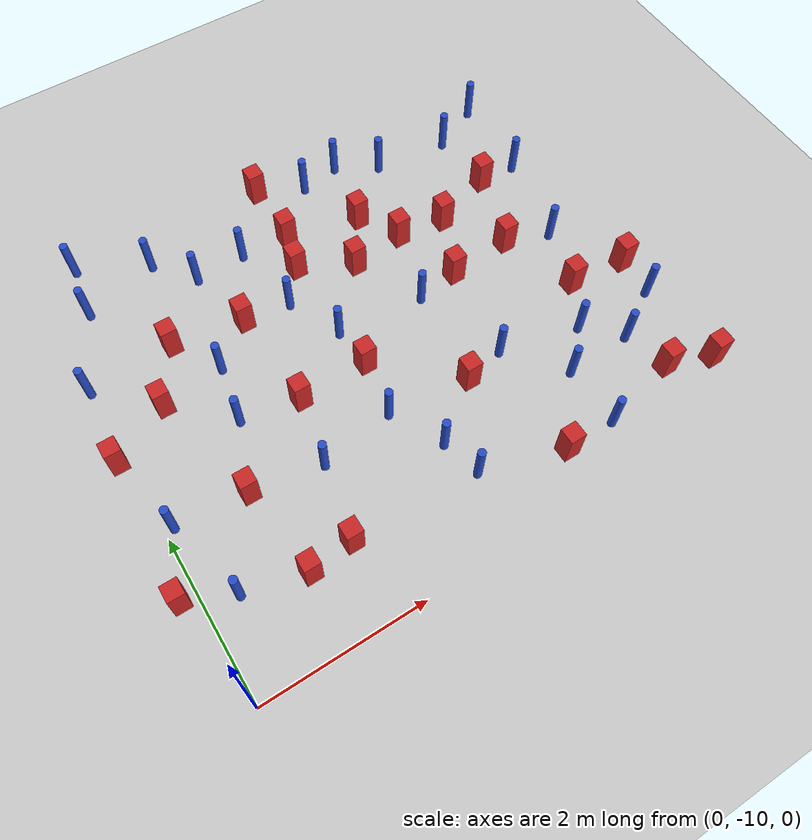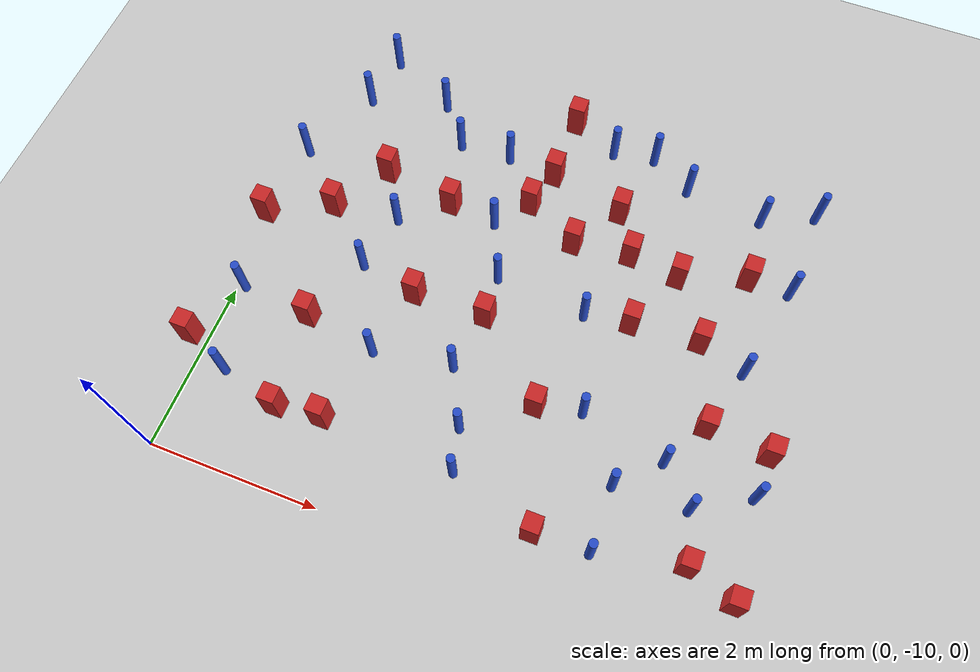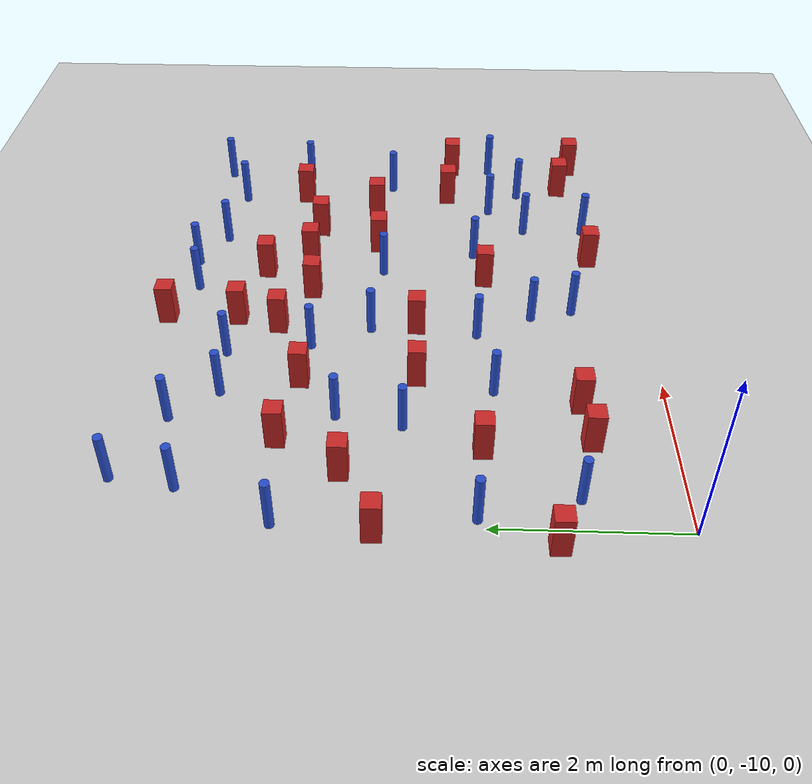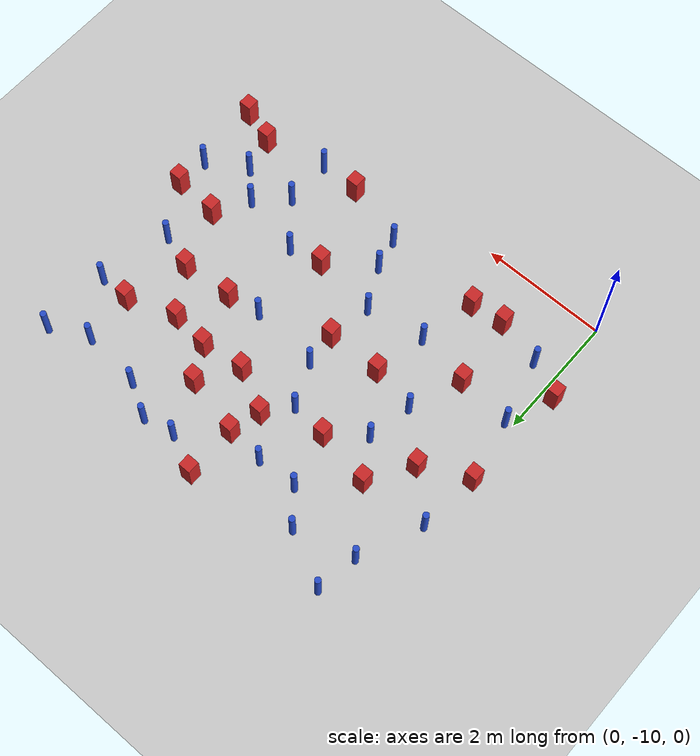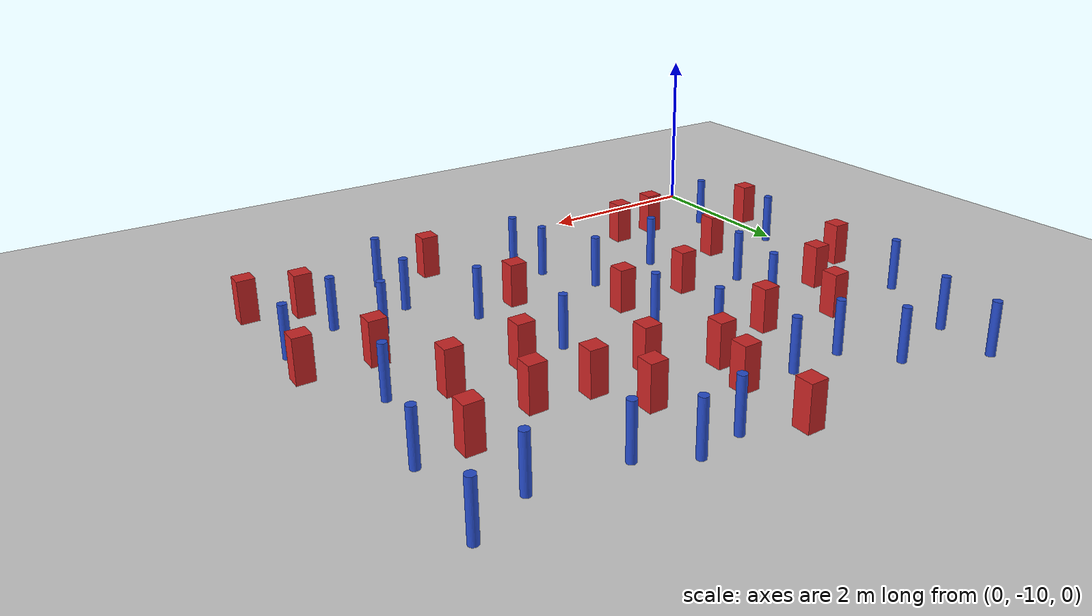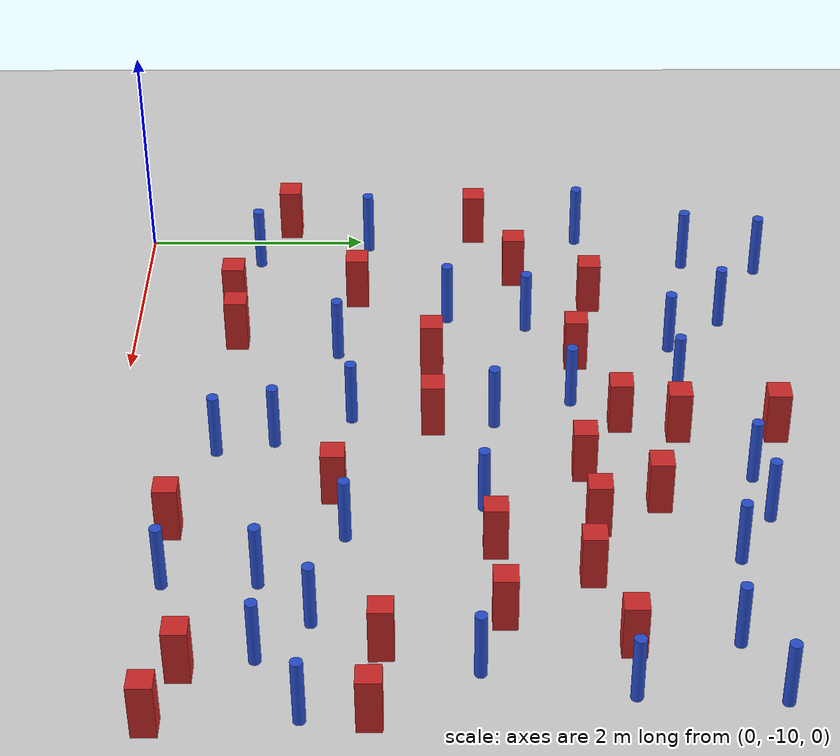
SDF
<sdf version="1.6">
 <world name="default">
  <model name="ground_plane">
   <static>1</static>
   <link name="link">
    <collision name="collision">
     <geometry><plane><normal>0 0 1</normal><size>100 100</size></plane></geometry>
     <surface><friction><ode><mu>100</mu><mu2>50</mu2></ode></friction></surface>
    </collision>
    <visual name="visual">
     <cast_shadows>0</cast_shadows>
     <geometry><plane><normal>0 0 1</normal><size>100 100</size></plane></geometry>
     <material>
      <ambient>1.0 1.0 1.0 1.0</ambient>
      <diffuse>0.8 0.8 0.8 1.0</diffuse>
      <specular>0.01 0.01 0.01 1.000000</specular>
     </material>
    </visual>
   </link>
  </model>
  <model name="square_post_obstacle2">
   <static>true</static>
   <pose>0.977631185792 -7.9997735086 1.91545236811e-07 -7.35059704564e-06 1.12565212e-07 2.39332434364e-05</pose>
   <link name="link">
    <pose>0 0 0.25 0 -0 0</pose>
    <inertial>
     <mass>100</mass>
     <inertia>
      <ixx>0.166667</ixx>
      <ixy>0</ixy>
      <ixz>0</ixz>
      <iyy>0.166667</iyy>
      <iyz>0</iyz>
      <izz>0.166667</izz>
     </inertia>
    </inertial>
    <collision name="collision"><geometry><box><size>.2 .2 .5</size></box></geometry></collision>
    <visual name="visual">
     <geometry><box><size>.2 .2 .5</size></box></geometry>
     <material>
      <script><name>Gazebo/Red</name><uri>file://media/materials/scripts/gazebo.material</uri></script>
     </material>
    </visual>
   </link>
  </model>
  <model name="pole_obstacle5">
   <static>true</static>
   <pose>2.53907456771 -6.09498216123 7.38925637345e-09 -8.47170692798e-08 1.24976765033e-08 -1.74513093019e-07</pose>
   <link name="link">
    <pose>0 0 0.3 0 -0 0</pose>
    <inertial>
     <mass>1</mass>
     <inertia><ixx>0.145833</ixx><ixy>0</ixy><ixz>0</ixz><iyy>0.145833</iyy><iyz>0</iyz><izz>0.125</izz></inertia>
    </inertial>
    <collision name="collision">
     <geometry><cylinder><radius>0.05</radius><length>.6</length></cylinder></geometry>
    </collision>
    <visual name="visual">
     <geometry><cylinder><radius>0.05</radius><length>.6</length></cylinder></geometry>
     <material>
      <script><name>Gazebo/Blue</name><uri>file://media/materials/scripts/gazebo.material</uri></script>
     </material>
    </visual>
   </link>
  </model>
  <model name="square_post_obstacle11">
   <static>true</static>
   <pose>2.01448924822 -7.3073891308 1.91545236811e-07 -7.35059704564e-06 1.12565212e-07 2.39332434364e-05</pose>
   <link name="link">
    <pose>0 0 0.25 0 -0 0</pose>
    <inertial>
     <mass>100</mass>
     <inertia>
      <ixx>0.166667</ixx>
      <ixy>0</ixy>
      <ixz>0</ixz>
      <iyy>0.166667</iyy>
      <iyz>0</iyz>
      <izz>0.166667</izz>
     </inertia>
    </inertial>
    <collision name="collision"><geometry><box><size>.2 .2 .5</size></box></geometry></collision>
    <visual name="visual">
     <geometry><box><size>.2 .2 .5</size></box></geometry>
     <material>
      <script><name>Gazebo/Red</name><uri>file://media/materials/scripts/gazebo.material</uri></script>
     </material>
    </visual>
   </link>
  </model>
  <model name="pole_obstacle11">
   <static>true</static>
   <pose>6.1561207919 -4.64312427732 7.38925637345e-09 -8.47170692796e-08 1.24976764786e-08 -1.74513093032e-07</pose>
   <link name="link">
    <pose>0 0 0.3 0 -0 0</pose>
    <inertial>
     <mass>1</mass>
     <inertia><ixx>0.145833</ixx><ixy>0</ixy><ixz>0</ixz><iyy>0.145833</iyy><iyz>0</iyz><izz>0.125</izz></inertia>
    </inertial>
    <collision name="collision">
     <geometry><cylinder><radius>0.05</radius><length>.6</length></cylinder></geometry>
    </collision>
    <visual name="visual">
     <geometry><cylinder><radius>0.05</radius><length>.6</length></cylinder></geometry>
     <material>
      <script><name>Gazebo/Blue</name><uri>file://media/materials/scripts/gazebo.material</uri></script>
     </material>
    </visual>
   </link>
  </model>
  <model name="pole_obstacle15">
   <static>true</static>
   <pose>2.8436868365 -6.76617443891 7.38925637345e-09 -8.47170692798e-08 1.24976765033e-08 -1.74513093019e-07</pose>
   <link name="link">
    <pose>0 0 0.3 0 -0 0</pose>
    <inertial>
     <mass>1</mass>
     <inertia><ixx>0.145833</ixx><ixy>0</ixy><ixz>0</ixz><iyy>0.145833</iyy><iyz>0</iyz><izz>0.125</izz></inertia>
    </inertial>
    <collision name="collision">
     <geometry><cylinder><radius>0.05</radius><length>.6</length></cylinder></geometry>
    </collision>
    <visual name="visual">
     <geometry><cylinder><radius>0.05</radius><length>.6</length></cylinder></geometry>
     <material>
      <script><name>Gazebo/Blue</name><uri>file://media/materials/scripts/gazebo.material</uri></script>
     </material>
    </visual>
   </link>
  </model>
  <model name="square_post_obstacle29">
   <static>true</static>
   <pose>2.88666197823 -7.29142793778 1.91545236811e-07 -7.35059704564e-06 1.12565212e-07 2.39332434364e-05</pose>
   <link name="link">
    <pose>0 0 0.25 0 -0 0</pose>
    <inertial>
     <mass>100</mass>
     <inertia>
      <ixx>0.166667</ixx>
      <ixy>0</ixy>
      <ixz>0</ixz>
      <iyy>0.166667</iyy>
      <iyz>0</iyz>
      <izz>0.166667</izz>
     </inertia>
    </inertial>
    <collision name="collision"><geometry><box><size>.2 .2 .5</size></box></geometry></collision>
    <visual name="visual">
     <geometry><box><size>.2 .2 .5</size></box></geometry>
     <material>
      <script><name>Gazebo/Red</name><uri>file://media/materials/scripts/gazebo.material</uri></script>
     </material>
    </visual>
   </link>
  </model>
  <model name="pole_obstacle34">
   <static>true</static>
   <pose>5.54072452328 -4.93161896656 7.38925637345e-09 -8.47170692796e-08 1.24976764786e-08 -1.74513093032e-07</pose>
   <link name="link">
    <pose>0 0 0.3 0 -0 0</pose>
    <inertial>
     <mass>1</mass>
     <inertia><ixx>0.145833</ixx><ixy>0</ixy><ixz>0</ixz><iyy>0.145833</iyy><iyz>0</iyz><izz>0.125</izz></inertia>
    </inertial>
    <collision name="collision">
     <geometry><cylinder><radius>0.05</radius><length>.6</length></cylinder></geometry>
    </collision>
    <visual name="visual">
     <geometry><cylinder><radius>0.05</radius><length>.6</length></cylinder></geometry>
     <material>
      <script><name>Gazebo/Blue</name><uri>file://media/materials/scripts/gazebo.material</uri></script>
     </material>
    </visual>
   </link>
  </model>
  <model name="pole_obstacle42">
   <static>true</static>
   <pose>1.29185774101 -7.17111206077 7.38925637345e-09 -8.47170692799e-08 1.24976765033e-08 -1.74513093018e-07</pose>
   <link name="link">
    <pose>0 0 0.3 0 -0 0</pose>
    <inertial>
     <mass>1</mass>
     <inertia><ixx>0.145833</ixx><ixy>0</ixy><ixz>0</ixz><iyy>0.145833</iyy><iyz>0</iyz><izz>0.125</izz></inertia>
    </inertial>
    <collision name="collision">
     <geometry><cylinder><radius>0.05</radius><length>.6</length></cylinder></geometry>
    </collision>
    <visual name="visual">
     <geometry><cylinder><radius>0.05</radius><length>.6</length></cylinder></geometry>
     <material>
      <script><name>Gazebo/Blue</name><uri>file://media/materials/scripts/gazebo.material</uri></script>
     </material>
    </visual>
   </link>
  </model>
  <model name="pole_obstacle43">
   <static>true</static>
   <pose>4.87249113603 -8.65789082809 7.38925637345e-09 -8.471706928e-08 1.24976765081e-08 -1.74513093015e-07</pose>
   <link name="link">
    <pose>0 0 0.3 0 -0 0</pose>
    <inertial>
     <mass>1</mass>
     <inertia><ixx>0.145833</ixx><ixy>0</ixy><ixz>0</ixz><iyy>0.145833</iyy><iyz>0</iyz><izz>0.125</izz></inertia>
    </inertial>
    <collision name="collision">
     <geometry><cylinder><radius>0.05</radius><length>.6</length></cylinder></geometry>
    </collision>
    <visual name="visual">
     <geometry><cylinder><radius>0.05</radius><length>.6</length></cylinder></geometry>
     <material>
      <script><name>Gazebo/Blue</name><uri>file://media/materials/scripts/gazebo.material</uri></script>
     </material>
    </visual>
   </link>
  </model>
  <model name="square_post_obstacle41">
   <static>true</static>
   <pose>5.62928758285 -7.66729643115 1.91545236811e-07 -7.35059704564e-06 1.12565212e-07 2.39332434364e-05</pose>
   <link name="link">
    <pose>0 0 0.25 0 -0 0</pose>
    <inertial>
     <mass>100</mass>
     <inertia>
      <ixx>0.166667</ixx>
      <ixy>0</ixy>
      <ixz>0</ixz>
      <iyy>0.166667</iyy>
      <iyz>0</iyz>
      <izz>0.166667</izz>
     </inertia>
    </inertial>
    <collision name="collision"><geometry><box><size>.2 .2 .5</size></box></geometry></collision>
    <visual name="visual">
     <geometry><box><size>.2 .2 .5</size></box></geometry>
     <material>
      <script><name>Gazebo/Red</name><uri>file://media/materials/scripts/gazebo.material</uri></script>
     </material>
    </visual>
   </link>
  </model>
  <model name="pole_obstacle46">
   <static>true</static>
   <pose>0.407049321773 -4.94603301689 7.38925637345e-09 -8.471706928e-08 1.24976765079e-08 -1.74513093015e-07</pose>
   <link name="link">
    <pose>0 0 0.3 0 -0 0</pose>
    <inertial>
     <mass>1</mass>
     <inertia><ixx>0.145833</ixx><ixy>0</ixy><ixz>0</ixz><iyy>0.145833</iyy><iyz>0</iyz><izz>0.125</izz></inertia>
    </inertial>
    <collision name="collision">
     <geometry><cylinder><radius>0.05</radius><length>.6</length></cylinder></geometry>
    </collision>
    <visual name="visual">
     <geometry><cylinder><radius>0.05</radius><length>.6</length></cylinder></geometry>
     <material>
      <script><name>Gazebo/Blue</name><uri>file://media/materials/scripts/gazebo.material</uri></script>
     </material>
    </visual>
   </link>
  </model>
  <model name="pole_obstacle49">
   <static>true</static>
   <pose>-0.0101606677763 -5.94270471977 7.38925637345e-09 -8.471706928e-08 1.24976765094e-08 -1.74513093017e-07</pose>
   <link name="link">
    <pose>0 0 0.3 0 -0 0</pose>
    <inertial>
     <mass>1</mass>
     <inertia><ixx>0.145833</ixx><ixy>0</ixy><ixz>0</ixz><iyy>0.145833</iyy><iyz>0</iyz><izz>0.125</izz></inertia>
    </inertial>
    <collision name="collision">
     <geometry><cylinder><radius>0.05</radius><length>.6</length></cylinder></geometry>
    </collision>
    <visual name="visual">
     <geometry><cylinder><radius>0.05</radius><length>.6</length></cylinder></geometry>
     <material>
      <script><name>Gazebo/Blue</name><uri>file://media/materials/scripts/gazebo.material</uri></script>
     </material>
    </visual>
   </link>
  </model>
  <model name="pole_obstacle51">
   <static>true</static>
   <pose>0.104899111266 -7.92160587808 7.38925637345e-09 -8.47170692799e-08 1.24976765062e-08 -1.74513093018e-07</pose>
   <link name="link">
    <pose>0 0 0.3 0 -0 0</pose>
    <inertial>
     <mass>1</mass>
     <inertia><ixx>0.145833</ixx><ixy>0</ixy><ixz>0</ixz><iyy>0.145833</iyy><iyz>0</iyz><izz>0.125</izz></inertia>
    </inertial>
    <collision name="collision">
     <geometry><cylinder><radius>0.05</radius><length>.6</length></cylinder></geometry>
    </collision>
    <visual name="visual">
     <geometry><cylinder><radius>0.05</radius><length>.6</length></cylinder></geometry>
     <material>
      <script><name>Gazebo/Blue</name><uri>file://media/materials/scripts/gazebo.material</uri></script>
     </material>
    </visual>
   </link>
  </model>
  <model name="square_post_obstacle59">
   <static>true</static>
   <pose>-0.1879063664 -8.67659288566 1.91545236811e-07 -7.35059704564e-06 1.12565212e-07 2.39332434364e-05</pose>
   <link name="link">
    <pose>0 0 0.25 0 -0 0</pose>
    <inertial>
     <mass>100</mass>
     <inertia>
      <ixx>0.166667</ixx>
      <ixy>0</ixy>
      <ixz>0</ixz>
      <iyy>0.166667</iyy>
      <iyz>0</iyz>
      <izz>0.166667</izz>
     </inertia>
    </inertial>
    <collision name="collision"><geometry><box><size>.2 .2 .5</size></box></geometry></collision>
    <visual name="visual">
     <geometry><box><size>.2 .2 .5</size></box></geometry>
     <material>
      <script><name>Gazebo/Red</name><uri>file://media/materials/scripts/gazebo.material</uri></script>
     </material>
    </visual>
   </link>
  </model>
  <model name="pole_obstacle62">
   <static>true</static>
   <pose>4.59335322611 -4.82335960341 7.38925637345e-09 -8.47170692796e-08 1.24976764786e-08 -1.74513093032e-07</pose>
   <link name="link">
    <pose>0 0 0.3 0 -0 0</pose>
    <inertial>
     <mass>1</mass>
     <inertia><ixx>0.145833</ixx><ixy>0</ixy><ixz>0</ixz><iyy>0.145833</iyy><iyz>0</iyz><izz>0.125</izz></inertia>
    </inertial>
    <collision name="collision">
     <geometry><cylinder><radius>0.05</radius><length>.6</length></cylinder></geometry>
    </collision>
    <visual name="visual">
     <geometry><cylinder><radius>0.05</radius><length>.6</length></cylinder></geometry>
     <material>
      <script><name>Gazebo/Blue</name><uri>file://media/materials/scripts/gazebo.material</uri></script>
     </material>
    </visual>
   </link>
  </model>
  <model name="square_post_obstacle75">
   <static>true</static>
   <pose>5.59714814872 -5.75157477714 1.91545236811e-07 -7.35059704564e-06 1.12565212e-07 2.39332434364e-05</pose>
   <link name="link">
    <pose>0 0 0.25 0 -0 0</pose>
    <inertial>
     <mass>100</mass>
     <inertia>
      <ixx>0.166667</ixx>
      <ixy>0</ixy>
      <ixz>0</ixz>
      <iyy>0.166667</iyy>
      <iyz>0</iyz>
      <izz>0.166667</izz>
     </inertia>
    </inertial>
    <collision name="collision"><geometry><box><size>.2 .2 .5</size></box></geometry></collision>
    <visual name="visual">
     <geometry><box><size>.2 .2 .5</size></box></geometry>
     <material>
      <script><name>Gazebo/Red</name><uri>file://media/materials/scripts/gazebo.material</uri></script>
     </material>
    </visual>
   </link>
  </model>
  <model name="square_post_obstacle76">
   <static>true</static>
   <pose>3.79640008173 -8.10415354773 1.91545236811e-07 -7.35059704564e-06 1.12565212e-07 2.39332434364e-05</pose>
   <link name="link">
    <pose>0 0 0.25 0 -0 0</pose>
    <inertial>
     <mass>100</mass>
     <inertia>
      <ixx>0.166667</ixx>
      <ixy>0</ixy>
      <ixz>0</ixz>
      <iyy>0.166667</iyy>
      <iyz>0</iyz>
      <izz>0.166667</izz>
     </inertia>
    </inertial>
    <collision name="collision"><geometry><box><size>.2 .2 .5</size></box></geometry></collision>
    <visual name="visual">
     <geometry><box><size>.2 .2 .5</size></box></geometry>
     <material>
      <script><name>Gazebo/Red</name><uri>file://media/materials/scripts/gazebo.material</uri></script>
     </material>
    </visual>
   </link>
  </model>
  <model name="pole_obstacle73">
   <static>true</static>
   <pose>1.34839101892 -4.69069152848 7.38925637345e-09 -8.47170692799e-08 1.24976765033e-08 -1.74513093018e-07</pose>
   <link name="link">
    <pose>0 0 0.3 0 -0 0</pose>
    <inertial>
     <mass>1</mass>
     <inertia><ixx>0.145833</ixx><ixy>0</ixy><ixz>0</ixz><iyy>0.145833</iyy><iyz>0</iyz><izz>0.125</izz></inertia>
    </inertial>
    <collision name="collision">
     <geometry><cylinder><radius>0.05</radius><length>.6</length></cylinder></geometry>
    </collision>
    <visual name="visual">
     <geometry><cylinder><radius>0.05</radius><length>.6</length></cylinder></geometry>
     <material>
      <script><name>Gazebo/Blue</name><uri>file://media/materials/scripts/gazebo.material</uri></script>
     </material>
    </visual>
   </link>
  </model>
  <model name="square_post_obstacle78">
   <static>true</static>
   <pose>4.47863727384 -6.78296028743 1.91545236811e-07 -7.35059704564e-06 1.12565212e-07 2.39332434364e-05</pose>
   <link name="link">
    <pose>0 0 0.25 0 -0 0</pose>
    <inertial>
     <mass>100</mass>
     <inertia>
      <ixx>0.166667</ixx>
      <ixy>0</ixy>
      <ixz>0</ixz>
      <iyy>0.166667</iyy>
      <iyz>0</iyz>
      <izz>0.166667</izz>
     </inertia>
    </inertial>
    <collision name="collision"><geometry><box><size>.2 .2 .5</size></box></geometry></collision>
    <visual name="visual">
     <geometry><box><size>.2 .2 .5</size></box></geometry>
     <material>
      <script><name>Gazebo/Red</name><uri>file://media/materials/scripts/gazebo.material</uri></script>
     </material>
    </visual>
   </link>
  </model>
  <model name="square_post_obstacle81">
   <static>true</static>
   <pose>1.06506102526 -5.87076956796 1.91545236811e-07 -7.35059704564e-06 1.12565212e-07 2.39332434364e-05</pose>
   <link name="link">
    <pose>0 0 0.25 0 -0 0</pose>
    <inertial>
     <mass>100</mass>
     <inertia>
      <ixx>0.166667</ixx>
      <ixy>0</ixy>
      <ixz>0</ixz>
      <iyy>0.166667</iyy>
      <iyz>0</iyz>
      <izz>0.166667</izz>
     </inertia>
    </inertial>
    <collision name="collision"><geometry><box><size>.2 .2 .5</size></box></geometry></collision>
    <visual name="visual">
     <geometry><box><size>.2 .2 .5</size></box></geometry>
     <material>
      <script><name>Gazebo/Red</name><uri>file://media/materials/scripts/gazebo.material</uri></script>
     </material>
    </visual>
   </link>
  </model>
  <model name="pole_obstacle89">
   <static>true</static>
   <pose>2.77292516153 -7.99258882435 7.38925637345e-09 -8.47170692793e-08 1.24976764454e-08 -1.74513093039e-07</pose>
   <link name="link">
    <pose>0 0 0.3 0 -0 0</pose>
    <inertial>
     <mass>1</mass>
     <inertia><ixx>0.145833</ixx><ixy>0</ixy><ixz>0</ixz><iyy>0.145833</iyy><iyz>0</iyz><izz>0.125</izz></inertia>
    </inertial>
    <collision name="collision">
     <geometry><cylinder><radius>0.05</radius><length>.6</length></cylinder></geometry>
    </collision>
    <visual name="visual">
     <geometry><cylinder><radius>0.05</radius><length>.6</length></cylinder></geometry>
     <material>
      <script><name>Gazebo/Blue</name><uri>file://media/materials/scripts/gazebo.material</uri></script>
     </material>
    </visual>
   </link>
  </model>
  <model name="pole_obstacle93">
   <static>true</static>
   <pose>2.38715492771 -5.15052821063 7.38925637345e-09 -8.47170692798e-08 1.24976765033e-08 -1.74513093019e-07</pose>
   <link name="link">
    <pose>0 0 0.3 0 -0 0</pose>
    <inertial>
     <mass>1</mass>
     <inertia><ixx>0.145833</ixx><ixy>0</ixy><ixz>0</ixz><iyy>0.145833</iyy><iyz>0</iyz><izz>0.125</izz></inertia>
    </inertial>
    <collision name="collision">
     <geometry><cylinder><radius>0.05</radius><length>.6</length></cylinder></geometry>
    </collision>
    <visual name="visual">
     <geometry><cylinder><radius>0.05</radius><length>.6</length></cylinder></geometry>
     <material>
      <script><name>Gazebo/Blue</name><uri>file://media/materials/scripts/gazebo.material</uri></script>
     </material>
    </visual>
   </link>
  </model>
  <model name="pole_obstacle94">
   <static>true</static>
   <pose>1.74556770088 -5.17782463767 7.38925637345e-09 -8.47170692799e-08 1.24976765033e-08 -1.74513093018e-07</pose>
   <link name="link">
    <pose>0 0 0.3 0 -0 0</pose>
    <inertial>
     <mass>1</mass>
     <inertia><ixx>0.145833</ixx><ixy>0</ixy><ixz>0</ixz><iyy>0.145833</iyy><iyz>0</iyz><izz>0.125</izz></inertia>
    </inertial>
    <collision name="collision">
     <geometry><cylinder><radius>0.05</radius><length>.6</length></cylinder></geometry>
    </collision>
    <visual name="visual">
     <geometry><cylinder><radius>0.05</radius><length>.6</length></cylinder></geometry>
     <material>
      <script><name>Gazebo/Blue</name><uri>file://media/materials/scripts/gazebo.material</uri></script>
     </material>
    </visual>
   </link>
  </model>
  <model name="pole_obstacle95">
   <static>true</static>
   <pose>3.10469891377 -8.63729947221 7.38925637345e-09 -8.47170692793e-08 1.24976764408e-08 -1.74513093041e-07</pose>
   <link name="link">
    <pose>0 0 0.3 0 -0 0</pose>
    <inertial>
     <mass>1</mass>
     <inertia><ixx>0.145833</ixx><ixy>0</ixy><ixz>0</ixz><iyy>0.145833</iyy><iyz>0</iyz><izz>0.125</izz></inertia>
    </inertial>
    <collision name="collision">
     <geometry><cylinder><radius>0.05</radius><length>.6</length></cylinder></geometry>
    </collision>
    <visual name="visual">
     <geometry><cylinder><radius>0.05</radius><length>.6</length></cylinder></geometry>
     <material>
      <script><name>Gazebo/Blue</name><uri>file://media/materials/scripts/gazebo.material</uri></script>
     </material>
    </visual>
   </link>
  </model>
  <model name="square_post_obstacle87">
   <static>true</static>
   <pose>6.40114675238 -9.37293960748 1.91545236811e-07 -7.35059704564e-06 1.12565212e-07 2.39332434364e-05</pose>
   <link name="link">
    <pose>0 0 0.25 0 -0 0</pose>
    <inertial>
     <mass>100</mass>
     <inertia>
      <ixx>0.166667</ixx>
      <ixy>0</ixy>
      <ixz>0</ixz>
      <iyy>0.166667</iyy>
      <iyz>0</iyz>
      <izz>0.166667</izz>
     </inertia>
    </inertial>
    <collision name="collision"><geometry><box><size>.2 .2 .5</size></box></geometry></collision>
    <visual name="visual">
     <geometry><box><size>.2 .2 .5</size></box></geometry>
     <material>
      <script><name>Gazebo/Red</name><uri>file://media/materials/scripts/gazebo.material</uri></script>
     </material>
    </visual>
   </link>
  </model>
  <model name="pole_obstacle98">
   <static>true</static>
   <pose>5.85463109547 -6.91776924618 7.38925637345e-09 -8.47170692796e-08 1.24976764786e-08 -1.74513093032e-07</pose>
   <link name="link">
    <pose>0 0 0.3 0 -0 0</pose>
    <inertial>
     <mass>1</mass>
     <inertia><ixx>0.145833</ixx><ixy>0</ixy><ixz>0</ixz><iyy>0.145833</iyy><iyz>0</iyz><izz>0.125</izz></inertia>
    </inertial>
    <collision name="collision">
     <geometry><cylinder><radius>0.05</radius><length>.6</length></cylinder></geometry>
    </collision>
    <visual name="visual">
     <geometry><cylinder><radius>0.05</radius><length>.6</length></cylinder></geometry>
     <material>
      <script><name>Gazebo/Blue</name><uri>file://media/materials/scripts/gazebo.material</uri></script>
     </material>
    </visual>
   </link>
  </model>
  <model name="pole_obstacle104">
   <static>true</static>
   <pose>4.08175416223 -4.53265078483 7.38925637345e-09 -8.47170692796e-08 1.24976764786e-08 -1.74513093032e-07</pose>
   <link name="link">
    <pose>0 0 0.3 0 -0 0</pose>
    <inertial>
     <mass>1</mass>
     <inertia><ixx>0.145833</ixx><ixy>0</ixy><ixz>0</ixz><iyy>0.145833</iyy><iyz>0</iyz><izz>0.125</izz></inertia>
    </inertial>
    <collision name="collision">
     <geometry><cylinder><radius>0.05</radius><length>.6</length></cylinder></geometry>
    </collision>
    <visual name="visual">
     <geometry><cylinder><radius>0.05</radius><length>.6</length></cylinder></geometry>
     <material>
      <script><name>Gazebo/Blue</name><uri>file://media/materials/scripts/gazebo.material</uri></script>
     </material>
    </visual>
   </link>
  </model>
  <model name="pole_obstacle108">
   <static>true</static>
   <pose>6.10103189131 -5.76332055702 7.38925637345e-09 -8.47170692796e-08 1.24976764786e-08 -1.74513093032e-07</pose>
   <link name="link">
    <pose>0 0 0.3 0 -0 0</pose>
    <inertial>
     <mass>1</mass>
     <inertia><ixx>0.145833</ixx><ixy>0</ixy><ixz>0</ixz><iyy>0.145833</iyy><iyz>0</iyz><izz>0.125</izz></inertia>
    </inertial>
    <collision name="collision">
     <geometry><cylinder><radius>0.05</radius><length>.6</length></cylinder></geometry>
    </collision>
    <visual name="visual">
     <geometry><cylinder><radius>0.05</radius><length>.6</length></cylinder></geometry>
     <material>
      <script><name>Gazebo/Blue</name><uri>file://media/materials/scripts/gazebo.material</uri></script>
     </material>
    </visual>
   </link>
  </model>
  <model name="square_post_obstacle97">
   <static>true</static>
   <pose>4.20573610407 -5.94334811047 1.91545236811e-07 -7.35059704564e-06 1.12565212e-07 2.39332434364e-05</pose>
   <link name="link">
    <pose>0 0 0.25 0 -0 0</pose>
    <inertial>
     <mass>100</mass>
     <inertia>
      <ixx>0.166667</ixx>
      <ixy>0</ixy>
      <ixz>0</ixz>
      <iyy>0.166667</iyy>
      <iyz>0</iyz>
      <izz>0.166667</izz>
     </inertia>
    </inertial>
    <collision name="collision"><geometry><box><size>.2 .2 .5</size></box></geometry></collision>
    <visual name="visual">
     <geometry><box><size>.2 .2 .5</size></box></geometry>
     <material>
      <script><name>Gazebo/Red</name><uri>file://media/materials/scripts/gazebo.material</uri></script>
     </material>
    </visual>
   </link>
  </model>
  <model name="square_post_obstacle103">
   <static>true</static>
   <pose>-0.0953432148446 -6.9205319302 1.91545236811e-07 -7.35059704564e-06 1.12565212e-07 2.39332434364e-05</pose>
   <link name="link">
    <pose>0 0 0.25 0 -0 0</pose>
    <inertial>
     <mass>100</mass>
     <inertia>
      <ixx>0.166667</ixx>
      <ixy>0</ixy>
      <ixz>0</ixz>
      <iyy>0.166667</iyy>
      <iyz>0</iyz>
      <izz>0.166667</izz>
     </inertia>
    </inertial>
    <collision name="collision"><geometry><box><size>.2 .2 .5</size></box></geometry></collision>
    <visual name="visual">
     <geometry><box><size>.2 .2 .5</size></box></geometry>
     <material>
      <script><name>Gazebo/Red</name><uri>file://media/materials/scripts/gazebo.material</uri></script>
     </material>
    </visual>
   </link>
  </model>
  <model name="square_post_obstacle110">
   <static>true</static>
   <pose>1.95164108272 -6.02961552153 1.91545236811e-07 -7.35059704564e-06 1.12565212e-07 2.39332434364e-05</pose>
   <link name="link">
    <pose>0 0 0.25 0 -0 0</pose>
    <inertial>
     <mass>100</mass>
     <inertia>
      <ixx>0.166667</ixx>
      <ixy>0</ixy>
      <ixz>0</ixz>
      <iyy>0.166667</iyy>
      <iyz>0</iyz>
      <izz>0.166667</izz>
     </inertia>
    </inertial>
    <collision name="collision"><geometry><box><size>.2 .2 .5</size></box></geometry></collision>
    <visual name="visual">
     <geometry><box><size>.2 .2 .5</size></box></geometry>
     <material>
      <script><name>Gazebo/Red</name><uri>file://media/materials/scripts/gazebo.material</uri></script>
     </material>
    </visual>
   </link>
  </model>
  <model name="pole_obstacle120">
   <static>true</static>
   <pose>3.57705224216 -4.62115506043 7.38925637345e-09 -8.47170692798e-08 1.24976765033e-08 -1.74513093019e-07</pose>
   <link name="link">
    <pose>0 0 0.3 0 -0 0</pose>
    <inertial>
     <mass>1</mass>
     <inertia><ixx>0.145833</ixx><ixy>0</ixy><ixz>0</ixz><iyy>0.145833</iyy><iyz>0</iyz><izz>0.125</izz></inertia>
    </inertial>
    <collision name="collision">
     <geometry><cylinder><radius>0.05</radius><length>.6</length></cylinder></geometry>
    </collision>
    <visual name="visual">
     <geometry><cylinder><radius>0.05</radius><length>.6</length></cylinder></geometry>
     <material>
      <script><name>Gazebo/Blue</name><uri>file://media/materials/scripts/gazebo.material</uri></script>
     </material>
    </visual>
   </link>
  </model>
  <model name="pole_obstacle128">
   <static>true</static>
   <pose>5.71519281022 -8.62181401211 7.38925637345e-09 -8.471706928e-08 1.24976765081e-08 -1.74513093015e-07</pose>
   <link name="link">
    <pose>0 0 0.3 0 -0 0</pose>
    <inertial>
     <mass>1</mass>
     <inertia><ixx>0.145833</ixx><ixy>0</ixy><ixz>0</ixz><iyy>0.145833</iyy><iyz>0</iyz><izz>0.125</izz></inertia>
    </inertial>
    <collision name="collision">
     <geometry><cylinder><radius>0.05</radius><length>.6</length></cylinder></geometry>
    </collision>
    <visual name="visual">
     <geometry><cylinder><radius>0.05</radius><length>.6</length></cylinder></geometry>
     <material>
      <script><name>Gazebo/Blue</name><uri>file://media/materials/scripts/gazebo.material</uri></script>
     </material>
    </visual>
   </link>
  </model>
  <model name="square_post_obstacle114">
   <static>true</static>
   <pose>4.81618404343 -6.01987877811 1.91545236811e-07 -7.35059704564e-06 1.12565212e-07 2.39332434364e-05</pose>
   <link name="link">
    <pose>0 0 0.25 0 -0 0</pose>
    <inertial>
     <mass>100</mass>
     <inertia>
      <ixx>0.166667</ixx>
      <ixy>0</ixy>
      <ixz>0</ixz>
      <iyy>0.166667</iyy>
      <iyz>0</iyz>
      <izz>0.166667</izz>
     </inertia>
    </inertial>
    <collision name="collision"><geometry><box><size>.2 .2 .5</size></box></geometry></collision>
    <visual name="visual">
     <geometry><box><size>.2 .2 .5</size></box></geometry>
     <material>
      <script><name>Gazebo/Red</name><uri>file://media/materials/scripts/gazebo.material</uri></script>
     </material>
    </visual>
   </link>
  </model>
  <model name="square_post_obstacle115">
   <static>true</static>
   <pose>3.51598951432 -6.02601105368 1.91545236811e-07 -7.35059704564e-06 1.12565212e-07 2.39332434364e-05</pose>
   <link name="link">
    <pose>0 0 0.25 0 -0 0</pose>
    <inertial>
     <mass>100</mass>
     <inertia>
      <ixx>0.166667</ixx>
      <ixy>0</ixy>
      <ixz>0</ixz>
      <iyy>0.166667</iyy>
      <iyz>0</iyz>
      <izz>0.166667</izz>
     </inertia>
    </inertial>
    <collision name="collision"><geometry><box><size>.2 .2 .5</size></box></geometry></collision>
    <visual name="visual">
     <geometry><box><size>.2 .2 .5</size></box></geometry>
     <material>
      <script><name>Gazebo/Red</name><uri>file://media/materials/scripts/gazebo.material</uri></script>
     </material>
    </visual>
   </link>
  </model>
  <model name="square_post_obstacle124">
   <static>true</static>
   <pose>5.28665746299 -6.72259742629 1.91545236811e-07 -7.35059704564e-06 1.12565212e-07 2.39332434364e-05</pose>
   <link name="link">
    <pose>0 0 0.25 0 -0 0</pose>
    <inertial>
     <mass>100</mass>
     <inertia>
      <ixx>0.166667</ixx>
      <ixy>0</ixy>
      <ixz>0</ixz>
      <iyy>0.166667</iyy>
      <iyz>0</iyz>
      <izz>0.166667</izz>
     </inertia>
    </inertial>
    <collision name="collision"><geometry><box><size>.2 .2 .5</size></box></geometry></collision>
    <visual name="visual">
     <geometry><box><size>.2 .2 .5</size></box></geometry>
     <material>
      <script><name>Gazebo/Red</name><uri>file://media/materials/scripts/gazebo.material</uri></script>
     </material>
    </visual>
   </link>
  </model>
  <model name="pole_obstacle141">
   <static>true</static>
   <pose>5.31763985837 -8.22000469605 7.38925637345e-09 -8.471706928e-08 1.24976765081e-08 -1.74513093015e-07</pose>
   <link name="link">
    <pose>0 0 0.3 0 -0 0</pose>
    <inertial>
     <mass>1</mass>
     <inertia><ixx>0.145833</ixx><ixy>0</ixy><ixz>0</ixz><iyy>0.145833</iyy><iyz>0</iyz><izz>0.125</izz></inertia>
    </inertial>
    <collision name="collision">
     <geometry><cylinder><radius>0.05</radius><length>.6</length></cylinder></geometry>
    </collision>
    <visual name="visual">
     <geometry><cylinder><radius>0.05</radius><length>.6</length></cylinder></geometry>
     <material>
      <script><name>Gazebo/Blue</name><uri>file://media/materials/scripts/gazebo.material</uri></script>
     </material>
    </visual>
   </link>
  </model>
  <model name="square_post_obstacle127">
   <static>true</static>
   <pose>0.640800284127 -6.55445177718 1.91545236811e-07 -7.35059704564e-06 1.12565212e-07 2.39332434364e-05</pose>
   <link name="link">
    <pose>0 0 0.25 0 -0 0</pose>
    <inertial>
     <mass>100</mass>
     <inertia>
      <ixx>0.166667</ixx>
      <ixy>0</ixy>
      <ixz>0</ixz>
      <iyy>0.166667</iyy>
      <iyz>0</iyz>
      <izz>0.166667</izz>
     </inertia>
    </inertial>
    <collision name="collision"><geometry><box><size>.2 .2 .5</size></box></geometry></collision>
    <visual name="visual">
     <geometry><box><size>.2 .2 .5</size></box></geometry>
     <material>
      <script><name>Gazebo/Red</name><uri>file://media/materials/scripts/gazebo.material</uri></script>
     </material>
    </visual>
   </link>
  </model>
  <model name="pole_obstacle142">
   <static>true</static>
   <pose>6.33385707413 -8.25199463286 7.38925637345e-09 -8.471706928e-08 1.24976765081e-08 -1.74513093015e-07</pose>
   <link name="link">
    <pose>0 0 0.3 0 -0 0</pose>
    <inertial>
     <mass>1</mass>
     <inertia><ixx>0.145833</ixx><ixy>0</ixy><ixz>0</ixz><iyy>0.145833</iyy><iyz>0</iyz><izz>0.125</izz></inertia>
    </inertial>
    <collision name="collision">
     <geometry><cylinder><radius>0.05</radius><length>.6</length></cylinder></geometry>
    </collision>
    <visual name="visual">
     <geometry><cylinder><radius>0.05</radius><length>.6</length></cylinder></geometry>
     <material>
      <script><name>Gazebo/Blue</name><uri>file://media/materials/scripts/gazebo.material</uri></script>
     </material>
    </visual>
   </link>
  </model>
  <model name="pole_obstacle145">
   <static>true</static>
   <pose>0.507125445128 -4.26907972792 7.38925637345e-09 -8.47170692799e-08 1.24976765073e-08 -1.74513093015e-07</pose>
   <link name="link">
    <pose>0 0 0.3 0 -0 0</pose>
    <inertial>
     <mass>1</mass>
     <inertia><ixx>0.145833</ixx><ixy>0</ixy><ixz>0</ixz><iyy>0.145833</iyy><iyz>0</iyz><izz>0.125</izz></inertia>
    </inertial>
    <collision name="collision">
     <geometry><cylinder><radius>0.05</radius><length>.6</length></cylinder></geometry>
    </collision>
    <visual name="visual">
     <geometry><cylinder><radius>0.05</radius><length>.6</length></cylinder></geometry>
     <material>
      <script><name>Gazebo/Blue</name><uri>file://media/materials/scripts/gazebo.material</uri></script>
     </material>
    </visual>
   </link>
  </model>
  <model name="pole_obstacle150">
   <static>true</static>
   <pose>1.42386912697 -6.45834946608 7.38925637345e-09 -8.47170692799e-08 1.24976765033e-08 -1.74513093018e-07</pose>
   <link name="link">
    <pose>0 0 0.3 0 -0 0</pose>
    <inertial>
     <mass>1</mass>
     <inertia><ixx>0.145833</ixx><ixy>0</ixy><ixz>0</ixz><iyy>0.145833</iyy><iyz>0</iyz><izz>0.125</izz></inertia>
    </inertial>
    <collision name="collision">
     <geometry><cylinder><radius>0.05</radius><length>.6</length></cylinder></geometry>
    </collision>
    <visual name="visual">
     <geometry><cylinder><radius>0.05</radius><length>.6</length></cylinder></geometry>
     <material>
      <script><name>Gazebo/Blue</name><uri>file://media/materials/scripts/gazebo.material</uri></script>
     </material>
    </visual>
   </link>
  </model>
  <model name="pole_obstacle153">
   <static>true</static>
   <pose>0.371773451406 -8.93986126295 7.38925637345e-09 -8.47170692796e-08 1.24976764724e-08 -1.74513093036e-07</pose>
   <link name="link">
    <pose>0 0 0.3 0 -0 0</pose>
    <inertial>
     <mass>1</mass>
     <inertia><ixx>0.145833</ixx><ixy>0</ixy><ixz>0</ixz><iyy>0.145833</iyy><iyz>0</iyz><izz>0.125</izz></inertia>
    </inertial>
    <collision name="collision">
     <geometry><cylinder><radius>0.05</radius><length>.6</length></cylinder></geometry>
    </collision>
    <visual name="visual">
     <geometry><cylinder><radius>0.05</radius><length>.6</length></cylinder></geometry>
     <material>
      <script><name>Gazebo/Blue</name><uri>file://media/materials/scripts/gazebo.material</uri></script>
     </material>
    </visual>
   </link>
  </model>
  <model name="square_post_obstacle145">
   <static>true</static>
   <pose>4.23721451689 -9.41955813238 1.91545236811e-07 -7.35059704564e-06 1.12565212e-07 2.39332434364e-05</pose>
   <link name="link">
    <pose>0 0 0.25 0 -0 0</pose>
    <inertial>
     <mass>100</mass>
     <inertia>
      <ixx>0.166667</ixx>
      <ixy>0</ixy>
      <ixz>0</ixz>
      <iyy>0.166667</iyy>
      <iyz>0</iyz>
      <izz>0.166667</izz>
     </inertia>
    </inertial>
    <collision name="collision"><geometry><box><size>.2 .2 .5</size></box></geometry></collision>
    <visual name="visual">
     <geometry><box><size>.2 .2 .5</size></box></geometry>
     <material>
      <script><name>Gazebo/Red</name><uri>file://media/materials/scripts/gazebo.material</uri></script>
     </material>
    </visual>
   </link>
  </model>
  <model name="pole_obstacle156">
   <static>true</static>
   <pose>3.94371083514 -6.86789444654 7.38925637345e-09 -8.47170692798e-08 1.24976765033e-08 -1.74513093019e-07</pose>
   <link name="link">
    <pose>0 0 0.3 0 -0 0</pose>
    <inertial>
     <mass>1</mass>
     <inertia><ixx>0.145833</ixx><ixy>0</ixy><ixz>0</ixz><iyy>0.145833</iyy><iyz>0</iyz><izz>0.125</izz></inertia>
    </inertial>
    <collision name="collision">
     <geometry><cylinder><radius>0.05</radius><length>.6</length></cylinder></geometry>
    </collision>
    <visual name="visual">
     <geometry><cylinder><radius>0.05</radius><length>.6</length></cylinder></geometry>
     <material>
      <script><name>Gazebo/Blue</name><uri>file://media/materials/scripts/gazebo.material</uri></script>
     </material>
    </visual>
   </link>
  </model>
  <model name="pole_obstacle169">
   <static>true</static>
   <pose>4.31774291647 -7.99132572432 7.38925637345e-09 -8.47170692798e-08 1.24976764934e-08 -1.74513093022e-07</pose>
   <link name="link">
    <pose>0 0 0.3 0 -0 0</pose>
    <inertial>
     <mass>1</mass>
     <inertia><ixx>0.145833</ixx><ixy>0</ixy><ixz>0</ixz><iyy>0.145833</iyy><iyz>0</iyz><izz>0.125</izz></inertia>
    </inertial>
    <collision name="collision">
     <geometry><cylinder><radius>0.05</radius><length>.6</length></cylinder></geometry>
    </collision>
    <visual name="visual">
     <geometry><cylinder><radius>0.05</radius><length>.6</length></cylinder></geometry>
     <material>
      <script><name>Gazebo/Blue</name><uri>file://media/materials/scripts/gazebo.material</uri></script>
     </material>
    </visual>
   </link>
  </model>
  <model name="square_post_obstacle163">
   <static>true</static>
   <pose>2.85918621792 -5.68851259962 1.91545236811e-07 -7.35059704564e-06 1.12565212e-07 2.39332434364e-05</pose>
   <link name="link">
    <pose>0 0 0.25 0 -0 0</pose>
    <inertial>
     <mass>100</mass>
     <inertia>
      <ixx>0.166667</ixx>
      <ixy>0</ixy>
      <ixz>0</ixz>
      <iyy>0.166667</iyy>
      <iyz>0</iyz>
      <izz>0.166667</izz>
     </inertia>
    </inertial>
    <collision name="collision"><geometry><box><size>.2 .2 .5</size></box></geometry></collision>
    <visual name="visual">
     <geometry><box><size>.2 .2 .5</size></box></geometry>
     <material>
      <script><name>Gazebo/Red</name><uri>file://media/materials/scripts/gazebo.material</uri></script>
     </material>
    </visual>
   </link>
  </model>
  <model name="square_post_obstacle173">
   <static>true</static>
   <pose>6.35684354424 -7.7353895296 1.91545236811e-07 -7.35059704564e-06 1.12565212e-07 2.39332434364e-05</pose>
   <link name="link">
    <pose>0 0 0.25 0 -0 0</pose>
    <inertial>
     <mass>100</mass>
     <inertia>
      <ixx>0.166667</ixx>
      <ixy>0</ixy>
      <ixz>0</ixz>
      <iyy>0.166667</iyy>
      <iyz>0</iyz>
      <izz>0.166667</izz>
     </inertia>
    </inertial>
    <collision name="collision"><geometry><box><size>.2 .2 .5</size></box></geometry></collision>
    <visual name="visual">
     <geometry><box><size>.2 .2 .5</size></box></geometry>
     <material>
      <script><name>Gazebo/Red</name><uri>file://media/materials/scripts/gazebo.material</uri></script>
     </material>
    </visual>
   </link>
  </model>
  <model name="square_post_obstacle176">
   <static>true</static>
   <pose>3.90977769532 -5.4266835085 1.91545236811e-07 -7.35059704564e-06 1.12565212e-07 2.39332434364e-05</pose>
   <link name="link">
    <pose>0 0 0.25 0 -0 0</pose>
    <inertial>
     <mass>100</mass>
     <inertia>
      <ixx>0.166667</ixx>
      <ixy>0</ixy>
      <ixz>0</ixz>
      <iyy>0.166667</iyy>
      <iyz>0</iyz>
      <izz>0.166667</izz>
     </inertia>
    </inertial>
    <collision name="collision"><geometry><box><size>.2 .2 .5</size></box></geometry></collision>
    <visual name="visual">
     <geometry><box><size>.2 .2 .5</size></box></geometry>
     <material>
      <script><name>Gazebo/Red</name><uri>file://media/materials/scripts/gazebo.material</uri></script>
     </material>
    </visual>
   </link>
  </model>
  <model name="square_post_obstacle180">
   <static>true</static>
   <pose>1.10976982202 -9.12357795514 1.91545236811e-07 -7.35059704564e-06 1.12565212e-07 2.39332434364e-05</pose>
   <link name="link">
    <pose>0 0 0.25 0 -0 0</pose>
    <inertial>
     <mass>100</mass>
     <inertia>
      <ixx>0.166667</ixx>
      <ixy>0</ixy>
      <ixz>0</ixz>
      <iyy>0.166667</iyy>
      <iyz>0</iyz>
      <izz>0.166667</izz>
     </inertia>
    </inertial>
    <collision name="collision"><geometry><box><size>.2 .2 .5</size></box></geometry></collision>
    <visual name="visual">
     <geometry><box><size>.2 .2 .5</size></box></geometry>
     <material>
      <script><name>Gazebo/Red</name><uri>file://media/materials/scripts/gazebo.material</uri></script>
     </material>
    </visual>
   </link>
  </model>
  <model name="square_post_obstacle183">
   <static>true</static>
   <pose>2.99968618178 -4.36495491097 1.91545236811e-07 -7.35059704564e-06 1.12565212e-07 2.39332434364e-05</pose>
   <link name="link">
    <pose>0 0 0.25 0 -0 0</pose>
    <inertial>
     <mass>100</mass>
     <inertia>
      <ixx>0.166667</ixx>
      <ixy>0</ixy>
      <ixz>0</ixz>
      <iyy>0.166667</iyy>
      <iyz>0</iyz>
      <izz>0.166667</izz>
     </inertia>
    </inertial>
    <collision name="collision"><geometry><box><size>.2 .2 .5</size></box></geometry></collision>
    <visual name="visual">
     <geometry><box><size>.2 .2 .5</size></box></geometry>
     <material>
      <script><name>Gazebo/Red</name><uri>file://media/materials/scripts/gazebo.material</uri></script>
     </material>
    </visual>
   </link>
  </model>
  <model name="square_post_obstacle184">
   <static>true</static>
   <pose>2.99304591744 -5.19961332221 1.91545236811e-07 -7.35059704564e-06 1.12565212e-07 2.39332434364e-05</pose>
   <link name="link">
    <pose>0 0 0.25 0 -0 0</pose>
    <inertial>
     <mass>100</mass>
     <inertia>
      <ixx>0.166667</ixx>
      <ixy>0</ixy>
      <ixz>0</ixz>
      <iyy>0.166667</iyy>
      <iyz>0</iyz>
      <izz>0.166667</izz>
     </inertia>
    </inertial>
    <collision name="collision"><geometry><box><size>.2 .2 .5</size></box></geometry></collision>
    <visual name="visual">
     <geometry><box><size>.2 .2 .5</size></box></geometry>
     <material>
      <script><name>Gazebo/Red</name><uri>file://media/materials/scripts/gazebo.material</uri></script>
     </material>
    </visual>
   </link>
  </model>
  <model name="pole_obstacle207">
   <static>true</static>
   <pose>4.88008335056 -9.41861700853 7.38925637345e-09 -8.471706928e-08 1.24976765081e-08 -1.74513093015e-07</pose>
   <link name="link">
    <pose>0 0 0.3 0 -0 0</pose>
    <inertial>
     <mass>1</mass>
     <inertia><ixx>0.145833</ixx><ixy>0</ixy><ixz>0</ixz><iyy>0.145833</iyy><iyz>0</iyz><izz>0.125</izz></inertia>
    </inertial>
    <collision name="collision">
     <geometry><cylinder><radius>0.05</radius><length>.6</length></cylinder></geometry>
    </collision>
    <visual name="visual">
     <geometry><cylinder><radius>0.05</radius><length>.6</length></cylinder></geometry>
     <material>
      <script><name>Gazebo/Blue</name><uri>file://media/materials/scripts/gazebo.material</uri></script>
     </material>
    </visual>
   </link>
  </model>
  <model name="pole_obstacle208">
   <static>true</static>
   <pose>3.2276707514 -9.12321684791 7.38925637345e-09 -8.47170692793e-08 1.24976764408e-08 -1.74513093041e-07</pose>
   <link name="link">
    <pose>0 0 0.3 0 -0 0</pose>
    <inertial>
     <mass>1</mass>
     <inertia><ixx>0.145833</ixx><ixy>0</ixy><ixz>0</ixz><iyy>0.145833</iyy><iyz>0</iyz><izz>0.125</izz></inertia>
    </inertial>
    <collision name="collision">
     <geometry><cylinder><radius>0.05</radius><length>.6</length></cylinder></geometry>
    </collision>
    <visual name="visual">
     <geometry><cylinder><radius>0.05</radius><length>.6</length></cylinder></geometry>
     <material>
      <script><name>Gazebo/Blue</name><uri>file://media/materials/scripts/gazebo.material</uri></script>
     </material>
    </visual>
   </link>
  </model>
  <model name="pole_obstacle213">
   <static>true</static>
   <pose>1.84201936107 -8.14789105527 7.38925637345e-09 -8.47170692798e-08 1.24976764881e-08 -1.74513093027e-07</pose>
   <link name="link">
    <pose>0 0 0.3 0 -0 0</pose>
    <inertial>
     <mass>1</mass>
     <inertia><ixx>0.145833</ixx><ixy>0</ixy><ixz>0</ixz><iyy>0.145833</iyy><iyz>0</iyz><izz>0.125</izz></inertia>
    </inertial>
    <collision name="collision">
     <geometry><cylinder><radius>0.05</radius><length>.6</length></cylinder></geometry>
    </collision>
    <visual name="visual">
     <geometry><cylinder><radius>0.05</radius><length>.6</length></cylinder></geometry>
     <material>
      <script><name>Gazebo/Blue</name><uri>file://media/materials/scripts/gazebo.material</uri></script>
     </material>
    </visual>
   </link>
  </model>
  <model name="square_post_obstacle199">
   <static>true</static>
   <pose>5.85244280378 -9.17941877487 1.91545236811e-07 -7.35059704564e-06 1.12565212e-07 2.39332434364e-05</pose>
   <link name="link">
    <pose>0 0 0.25 0 -0 0</pose>
    <inertial>
     <mass>100</mass>
     <inertia>
      <ixx>0.166667</ixx>
      <ixy>0</ixy>
      <ixz>0</ixz>
      <iyy>0.166667</iyy>
      <iyz>0</iyz>
      <izz>0.166667</izz>
     </inertia>
    </inertial>
    <collision name="collision"><geometry><box><size>.2 .2 .5</size></box></geometry></collision>
    <visual name="visual">
     <geometry><box><size>.2 .2 .5</size></box></geometry>
     <material>
      <script><name>Gazebo/Red</name><uri>file://media/materials/scripts/gazebo.material</uri></script>
     </material>
    </visual>
   </link>
  </model>
  <model name="square_post_obstacle200">
   <static>true</static>
   <pose>1.64777528495 -9.06284988462 1.91545236811e-07 -7.35059704564e-06 1.12565212e-07 2.39332434364e-05</pose>
   <link name="link">
    <pose>0 0 0.25 0 -0 0</pose>
    <inertial>
     <mass>100</mass>
     <inertia>
      <ixx>0.166667</ixx>
      <ixy>0</ixy>
      <ixz>0</ixz>
      <iyy>0.166667</iyy>
      <iyz>0</iyz>
      <izz>0.166667</izz>
     </inertia>
    </inertial>
    <collision name="collision"><geometry><box><size>.2 .2 .5</size></box></geometry></collision>
    <visual name="visual">
     <geometry><box><size>.2 .2 .5</size></box></geometry>
     <material>
      <script><name>Gazebo/Red</name><uri>file://media/materials/scripts/gazebo.material</uri></script>
     </material>
    </visual>
   </link>
  </model>
 </world>
</sdf>
